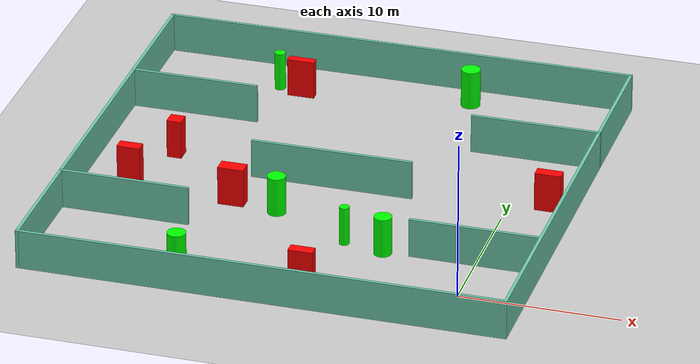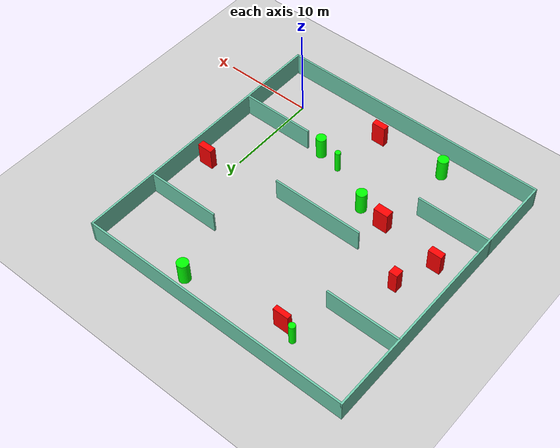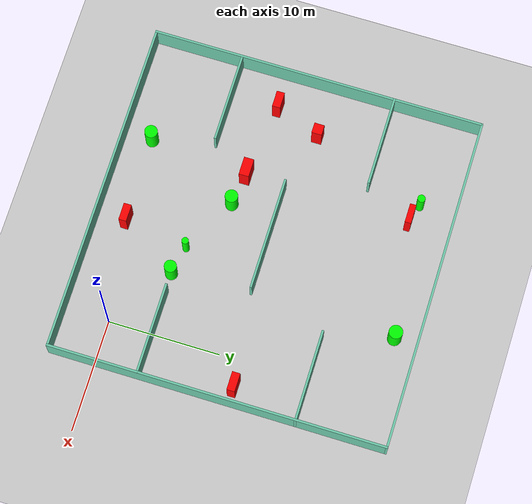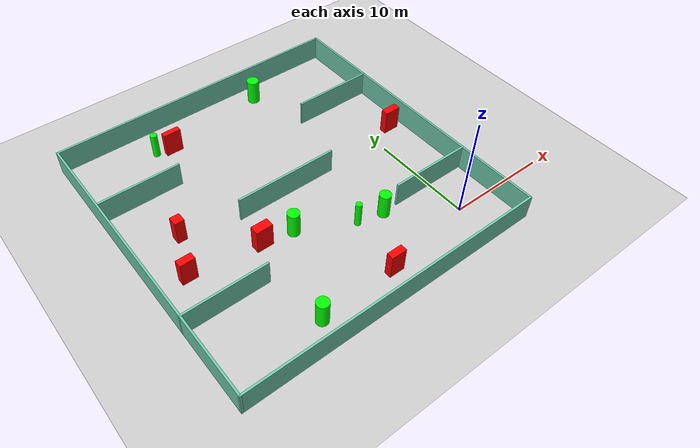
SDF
<sdf version="1.7">
 <world name="default">
  <light name="sun" type="directional">
   <pose>0 0 10 0 -0 0</pose>
   <diffuse>0.8 0.8 0.8 1</diffuse>
   <specular>0.2 0.2 0.2 1</specular>
   <attenuation>
    <range>1000</range>
    <constant>0.9</constant>
    <linear>0.01</linear>
    <quadratic>0.001</quadratic>
   </attenuation>
   <direction>-0.5 0.1 -0.9</direction>
   <spot><inner_angle>0</inner_angle><outer_angle>0</outer_angle><falloff>0</falloff></spot>
  </light>
  <model name="ground_plane">
   <static>1</static>
   <link name="link">
    <collision name="collision">
     <geometry><plane><normal>0 0 1</normal><size>100 100</size></plane></geometry>
     <surface>
      <contact><collide_bitmask>65535</collide_bitmask></contact>
      <friction><ode><mu>100</mu><mu2>50</mu2></ode></friction>
     </surface>
    </collision>
    <visual name="visual">
     <cast_shadows>0</cast_shadows>
     <geometry><plane><normal>0 0 1</normal><size>100 100</size></plane></geometry>
     <material>
      <script><uri>file://media/materials/scripts/gazebo.material</uri><name>Gazebo/Grey</name></script>
     </material>
    </visual>
   </link>
  </model>
  <gravity>0 0 -9.8</gravity>
  <magnetic_field>6e-06 2.3e-05 -4.2e-05</magnetic_field>
  <atmosphere type="adiabatic"/>
  <physics type="ode">
   <max_step_size>0.001</max_step_size>
   <real_time_factor>1</real_time_factor>
   <real_time_update_rate>1000</real_time_update_rate>
  </physics>
  <scene><ambient>0.4 0.4 0.4 1</ambient><background>0.7 0.7 0.7 1</background><shadows>1</shadows></scene>
  <spherical_coordinates>
   <surface_model>EARTH_WGS84</surface_model>
   <latitude_deg>0</latitude_deg>
   <longitude_deg>0</longitude_deg>
   <elevation>0</elevation>
   <heading_deg>0</heading_deg>
  </spherical_coordinates>
  <model name="my_base_walls">
   <link name="Wall_10">
    <collision name="Wall_10_Collision">
     <geometry><box><size>8.2 0.2 2.5</size></box></geometry>
     <pose>0 0 1.25 0 -0 0</pose>
    </collision>
    <visual name="Wall_10_Visual">
     <pose>0 0 1.25 0 -0 0</pose>
     <geometry><box><size>8.2 0.2 2.5</size></box></geometry>
     <material>
      <script><uri>file://media/materials/scripts/gazebo.material</uri><name>Gazebo/Grey</name></script>
      <ambient>0.435294 0.796078 0.67451 1</ambient>
     </material>
     <meta><layer>0</layer></meta>
    </visual>
    <pose>-11 -7 0 0 -0 0</pose>
   </link>
   <link name="Wall_12">
    <collision name="Wall_12_Collision">
     <geometry><box><size>8.2 0.2 2.5</size></box></geometry>
     <pose>0 0 1.25 0 -0 0</pose>
    </collision>
    <visual name="Wall_12_Visual">
     <pose>0 0 1.25 0 -0 0</pose>
     <geometry><box><size>8.2 0.2 2.5</size></box></geometry>
     <material>
      <script><uri>file://media/materials/scripts/gazebo.material</uri><name>Gazebo/Grey</name></script>
      <ambient>0.435294 0.796078 0.67451 1</ambient>
     </material>
     <meta><layer>0</layer></meta>
    </visual>
    <pose>-11 7 0 0 -0 0</pose>
   </link>
   <link name="Wall_14">
    <collision name="Wall_14_Collision">
     <geometry><box><size>8.2 0.2 2.5</size></box></geometry>
     <pose>0 0 1.25 0 -0 0</pose>
    </collision>
    <visual name="Wall_14_Visual">
     <pose>0 0 1.25 0 -0 0</pose>
     <geometry><box><size>8.2 0.2 2.5</size></box></geometry>
     <material>
      <script><uri>file://media/materials/scripts/gazebo.material</uri><name>Gazebo/Grey</name></script>
      <ambient>0.435294 0.796078 0.67451 1</ambient>
     </material>
     <meta><layer>0</layer></meta>
    </visual>
    <pose>11 7 0 0 -0 3.14159</pose>
   </link>
   <link name="Wall_16">
    <collision name="Wall_16_Collision">
     <geometry><box><size>10.2 0.2 2.5</size></box></geometry>
     <pose>0 0 1.25 0 -0 0</pose>
    </collision>
    <visual name="Wall_16_Visual">
     <pose>0 0 1.25 0 -0 0</pose>
     <geometry><box><size>10.2 0.2 2.5</size></box></geometry>
     <material>
      <script><uri>file://media/materials/scripts/gazebo.material</uri><name>Gazebo/Grey</name></script>
      <ambient>0.435294 0.796078 0.67451 1</ambient>
     </material>
     <meta><layer>0</layer></meta>
    </visual>
    <pose>0 0 0 0 -0 3.14159</pose>
   </link>
   <link name="Wall_2">
    <collision name="Wall_2_Collision">
     <geometry><box><size>30.2 0.2 2.5</size></box></geometry>
     <pose>0 0 1.25 0 -0 0</pose>
    </collision>
    <visual name="Wall_2_Visual">
     <pose>0 0 1.25 0 -0 0</pose>
     <geometry><box><size>30.2 0.2 2.5</size></box></geometry>
     <material>
      <script><uri>file://media/materials/scripts/gazebo.material</uri><name>Gazebo/Grey</name></script>
      <ambient>0.435294 0.796078 0.67451 1</ambient>
     </material>
     <meta><layer>0</layer></meta>
    </visual>
    <pose>0 -15 0 0 -0 3.14159</pose>
   </link>
   <link name="Wall_3">
    <collision name="Wall_3_Collision">
     <geometry><box><size>30.2 0.2 2.5</size></box></geometry>
     <pose>0 0 1.25 0 -0 0</pose>
    </collision>
    <visual name="Wall_3_Visual">
     <pose>0 0 1.25 0 -0 0</pose>
     <geometry><box><size>30.2 0.2 2.5</size></box></geometry>
     <material>
      <script><uri>file://media/materials/scripts/gazebo.material</uri><name>Gazebo/Grey</name></script>
      <ambient>0.435294 0.796078 0.67451 1</ambient>
     </material>
     <meta><layer>0</layer></meta>
    </visual>
    <pose>-15 0 0 0 -0 1.5708</pose>
   </link>
   <link name="Wall_4">
    <collision name="Wall_4_Collision">
     <geometry><box><size>30.2 0.2 2.5</size></box></geometry>
     <pose>0 0 1.25 0 -0 0</pose>
    </collision>
    <visual name="Wall_4_Visual">
     <pose>0 0 1.25 0 -0 0</pose>
     <geometry><box><size>30.2 0.2 2.5</size></box></geometry>
     <material>
      <script><uri>file://media/materials/scripts/gazebo.material</uri><name>Gazebo/Grey</name></script>
      <ambient>0.435294 0.796078 0.67451 1</ambient>
     </material>
     <meta><layer>0</layer></meta>
    </visual>
    <pose>0 15 0 0 -0 0</pose>
   </link>
   <link name="Wall_6">
    <collision name="Wall_6_Collision">
     <geometry><box><size>30.2 0.2 2.5</size></box></geometry>
     <pose>0 0 1.25 0 -0 0</pose>
    </collision>
    <visual name="Wall_6_Visual">
     <pose>0 0 1.25 0 -0 0</pose>
     <geometry><box><size>30.2 0.2 2.5</size></box></geometry>
     <material>
      <script><uri>file://media/materials/scripts/gazebo.material</uri><name>Gazebo/Grey</name></script>
      <ambient>0.435294 0.796078 0.67451 1</ambient>
     </material>
     <meta><layer>0</layer></meta>
    </visual>
    <pose>15 0 0 0 -0 1.5708</pose>
   </link>
   <link name="Wall_8">
    <collision name="Wall_8_Collision">
     <geometry><box><size>8.2 0.2 2.5</size></box></geometry>
     <pose>0 0 1.25 0 -0 0</pose>
    </collision>
    <visual name="Wall_8_Visual">
     <pose>0 0 1.25 0 -0 0</pose>
     <geometry><box><size>8.2 0.2 2.5</size></box></geometry>
     <material>
      <script><uri>file://media/materials/scripts/gazebo.material</uri><name>Gazebo/Grey</name></script>
      <ambient>0.435294 0.796078 0.67451 1</ambient>
     </material>
     <meta><layer>0</layer></meta>
    </visual>
    <pose>11 -7 0 0 -0 3.14159</pose>
   </link>
   <static>1</static>
   <pose>-11 11 0 0 -0 0</pose>
  </model>
  <model name="cylinder1">
   <static>1</static>
   <link name="link">
    <inertial>
     <mass>1</mass>
     <inertia><ixx>0.5</ixx><ixy>0</ixy><ixz>0</ixz><iyy>0.5</iyy><iyz>0</iyz><izz>1</izz></inertia>
    </inertial>
    <collision name="collision">
     <geometry><cylinder><radius>0.5532688743608554</radius><length>2.5</length></cylinder></geometry>
    </collision>
    <visual name="visual">
     <geometry><cylinder><radius>0.5532688743608554</radius><length>2.5</length></cylinder></geometry>
     <material>
      <ambient>0 1 0 1</ambient>
      <diffuse>0 1 0 1</diffuse>
      <specular>0.1 0.1 0.1 1</specular>
      <emissive>0 0 0 0</emissive>
     </material>
    </visual>
   </link>
   <pose>-5.678940079190339 3.8435010239918483 1.25 0 0 0</pose>
  </model>
  <model name="cylinder2">
   <static>1</static>
   <link name="link">
    <inertial>
     <mass>1</mass>
     <inertia><ixx>0.5</ixx><ixy>0</ixy><ixz>0</ixz><iyy>0.5</iyy><iyz>0</iyz><izz>1</izz></inertia>
    </inertial>
    <collision name="collision">
     <geometry><cylinder><radius>0.30660748472139093</radius><length>2.5</length></cylinder></geometry>
    </collision>
    <visual name="visual">
     <geometry><cylinder><radius>0.30660748472139093</radius><length>2.5</length></cylinder></geometry>
     <material>
      <ambient>0 1 0 1</ambient>
      <diffuse>0 1 0 1</diffuse>
      <specular>0.1 0.1 0.1 1</specular>
      <emissive>0 0 0 0</emissive>
     </material>
    </visual>
   </link>
   <pose>-8.230044498632473 4.364009190360999 1.25 0 0 0</pose>
  </model>
  <model name="cylinder3">
   <static>1</static>
   <link name="link">
    <inertial>
     <mass>1</mass>
     <inertia><ixx>0.5</ixx><ixy>0</ixy><ixz>0</ixz><iyy>0.5</iyy><iyz>0</iyz><izz>1</izz></inertia>
    </inertial>
    <collision name="collision">
     <geometry><cylinder><radius>0.5821765617603003</radius><length>2.5</length></cylinder></geometry>
    </collision>
    <visual name="visual">
     <geometry><cylinder><radius>0.5821765617603003</radius><length>2.5</length></cylinder></geometry>
     <material>
      <ambient>0 1 0 1</ambient>
      <diffuse>0 1 0 1</diffuse>
      <specular>0.1 0.1 0.1 1</specular>
      <emissive>0 0 0 0</emissive>
     </material>
    </visual>
   </link>
   <pose>-16.863791745330634 -1.5435790906939677 1.25 0 0 0</pose>
  </model>
  <model name="cylinder4">
   <static>1</static>
   <link name="link">
    <inertial>
     <mass>1</mass>
     <inertia><ixx>0.5</ixx><ixy>0</ixy><ixz>0</ixz><iyy>0.5</iyy><iyz>0</iyz><izz>1</izz></inertia>
    </inertial>
    <collision name="collision">
     <geometry><cylinder><radius>0.3475000887436618</radius><length>2.5</length></cylinder></geometry>
    </collision>
    <visual name="visual">
     <geometry><cylinder><radius>0.3475000887436618</radius><length>2.5</length></cylinder></geometry>
     <material>
      <ambient>0 1 0 1</ambient>
      <diffuse>0 1 0 1</diffuse>
      <specular>0.1 0.1 0.1 1</specular>
      <emissive>0 0 0 0</emissive>
     </material>
    </visual>
   </link>
   <pose>-17.879519863038407 22.79309866017064 1.25 0 0 0</pose>
  </model>
  <model name="cylinder5">
   <static>1</static>
   <link name="link">
    <inertial>
     <mass>1</mass>
     <inertia><ixx>0.5</ixx><ixy>0</ixy><ixz>0</ixz><iyy>0.5</iyy><iyz>0</iyz><izz>1</izz></inertia>
    </inertial>
    <collision name="collision">
     <geometry><cylinder><radius>0.611566158175961</radius><length>2.5</length></cylinder></geometry>
    </collision>
    <visual name="visual">
     <geometry><cylinder><radius>0.611566158175961</radius><length>2.5</length></cylinder></geometry>
     <material>
      <ambient>0 1 0 1</ambient>
      <diffuse>0 1 0 1</diffuse>
      <specular>0.1 0.1 0.1 1</specular>
      <emissive>0 0 0 0</emissive>
     </material>
    </visual>
   </link>
   <pose>-5.774016655908786 23.960754297750473 1.25 0 0 0</pose>
  </model>
  <model name="cylinder6">
   <static>1</static>
   <link name="link">
    <inertial>
     <mass>1</mass>
     <inertia><ixx>0.5</ixx><ixy>0</ixy><ixz>0</ixz><iyy>0.5</iyy><iyz>0</iyz><izz>1</izz></inertia>
    </inertial>
    <collision name="collision">
     <geometry><cylinder><radius>0.5788611591574275</radius><length>2.5</length></cylinder></geometry>
    </collision>
    <visual name="visual">
     <geometry><cylinder><radius>0.5788611591574275</radius><length>2.5</length></cylinder></geometry>
     <material>
      <ambient>0 1 0 1</ambient>
      <diffuse>0 1 0 1</diffuse>
      <specular>0.1 0.1 0.1 1</specular>
      <emissive>0 0 0 0</emissive>
     </material>
    </visual>
   </link>
   <pose>-13.262228402197353 6.96506301236197 1.25 0 0 0</pose>
  </model>
  <model name="box1">
   <static>1</static>
   <link name="link">
    <inertial>
     <mass>1</mass>
     <inertia><ixx>0.083</ixx><ixy>0</ixy><ixz>0</ixz><iyy>0.083</iyy><iyz>0</iyz><izz>0.083</izz></inertia>
    </inertial>
    <collision name="collision">
     <geometry><box><size>1.5245466354451904 0.6853641276435537 2.5</size></box></geometry>
    </collision>
    <visual name="visual">
     <geometry><box><size>1.5245466354451904 0.6853641276435537 2.5</size></box></geometry>
     <material>
      <ambient>1 0 0 1</ambient>
      <diffuse>1 0 0 1</diffuse>
      <specular>0.1 0.1 0.1 1</specular>
      <emissive>0 0 0 0</emissive>
     </material>
    </visual>
    <sensor name="my_contact" type="contact">
     <contact><collision>box_collision</collision><topic>__default_topic__</topic></contact>
    </sensor>
   </link>
   <pose>-9.16199511343914 -1.3913237681959782 1.25 0 0 0</pose>
  </model>
  <model name="box2">
   <static>1</static>
   <link name="link">
    <inertial>
     <mass>1</mass>
     <inertia><ixx>0.083</ixx><ixy>0</ixy><ixz>0</ixz><iyy>0.083</iyy><iyz>0</iyz><izz>0.083</izz></inertia>
    </inertial>
    <collision name="collision">
     <geometry><box><size>0.9322370697425694 0.9100168716020247 2.5</size></box></geometry>
    </collision>
    <visual name="visual">
     <geometry><box><size>0.9322370697425694 0.9100168716020247 2.5</size></box></geometry>
     <material>
      <ambient>1 0 0 1</ambient>
      <diffuse>1 0 0 1</diffuse>
      <specular>0.1 0.1 0.1 1</specular>
      <emissive>0 0 0 0</emissive>
     </material>
    </visual>
    <sensor name="my_contact" type="contact">
     <contact><collision>box_collision</collision><topic>__default_topic__</topic></contact>
    </sensor>
   </link>
   <pose>-21.3926164338787 12.374327057512087 1.25 0 0 0</pose>
  </model>
  <model name="box3">
   <static>1</static>
   <link name="link">
    <inertial>
     <mass>1</mass>
     <inertia><ixx>0.083</ixx><ixy>0</ixy><ixz>0</ixz><iyy>0.083</iyy><iyz>0</iyz><izz>0.083</izz></inertia>
    </inertial>
    <collision name="collision">
     <geometry><box><size>1.6374050491714072 0.7124054422955004 2.5</size></box></geometry>
    </collision>
    <visual name="visual">
     <geometry><box><size>1.6374050491714072 0.7124054422955004 2.5</size></box></geometry>
     <material>
      <ambient>1 0 0 1</ambient>
      <diffuse>1 0 0 1</diffuse>
      <specular>0.1 0.1 0.1 1</specular>
      <emissive>0 0 0 0</emissive>
     </material>
    </visual>
    <sensor name="my_contact" type="contact">
     <contact><collision>box_collision</collision><topic>__default_topic__</topic></contact>
    </sensor>
   </link>
   <pose>2.3958466238373894 12.052781029393666 1.25 0 0 0</pose>
  </model>
  <model name="box4">
   <static>1</static>
   <link name="link">
    <inertial>
     <mass>1</mass>
     <inertia><ixx>0.083</ixx><ixy>0</ixy><ixz>0</ixz><iyy>0.083</iyy><iyz>0</iyz><izz>0.083</izz></inertia>
    </inertial>
    <collision name="collision">
     <geometry><box><size>1.4666998338379564 0.7228993367621452 2.5</size></box></geometry>
    </collision>
    <visual name="visual">
     <geometry><box><size>1.4666998338379564 0.7228993367621452 2.5</size></box></geometry>
     <material>
      <ambient>1 0 0 1</ambient>
      <diffuse>1 0 0 1</diffuse>
      <specular>0.1 0.1 0.1 1</specular>
      <emissive>0 0 0 0</emissive>
     </material>
    </visual>
    <sensor name="my_contact" type="contact">
     <contact><collision>box_collision</collision><topic>__default_topic__</topic></contact>
    </sensor>
   </link>
   <pose>-23.012315563367068 8.254205313744729 1.25 0 0 0</pose>
  </model>
  <model name="box5">
   <static>1</static>
   <link name="link">
    <inertial>
     <mass>1</mass>
     <inertia><ixx>0.083</ixx><ixy>0</ixy><ixz>0</ixz><iyy>0.083</iyy><iyz>0</iyz><izz>0.083</izz></inertia>
    </inertial>
    <collision name="collision">
     <geometry><box><size>1.725358845424169 0.554651058251123 2.5</size></box></geometry>
    </collision>
    <visual name="visual">
     <geometry><box><size>1.725358845424169 0.554651058251123 2.5</size></box></geometry>
     <material>
      <ambient>1 0 0 1</ambient>
      <diffuse>1 0 0 1</diffuse>
      <specular>0.1 0.1 0.1 1</specular>
      <emissive>0 0 0 0</emissive>
     </material>
    </visual>
    <sensor name="my_contact" type="contact">
     <contact><collision>box_collision</collision><topic>__default_topic__</topic></contact>
    </sensor>
   </link>
   <pose>-16.302556445198988 22.254924179808828 1.25 0 0 0</pose>
  </model>
  <model name="box6">
   <static>1</static>
   <link name="link">
    <inertial>
     <mass>1</mass>
     <inertia><ixx>0.083</ixx><ixy>0</ixy><ixz>0</ixz><iyy>0.083</iyy><iyz>0</iyz><izz>0.083</izz></inertia>
    </inertial>
    <collision name="collision">
     <geometry><box><size>1.6344181262854585 0.8913559456293216 2.5</size></box></geometry>
    </collision>
    <visual name="visual">
     <geometry><box><size>1.6344181262854585 0.8913559456293216 2.5</size></box></geometry>
     <material>
      <ambient>1 0 0 1</ambient>
      <diffuse>1 0 0 1</diffuse>
      <specular>0.1 0.1 0.1 1</specular>
      <emissive>0 0 0 0</emissive>
     </material>
    </visual>
    <sensor name="my_contact" type="contact">
     <contact><collision>box_collision</collision><topic>__default_topic__</topic></contact>
    </sensor>
   </link>
   <pose>-16.20154081139829 7.414621071951212 1.25 0 0 0</pose>
  </model>
 </world>
</sdf>
